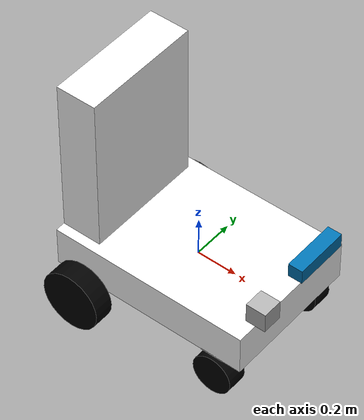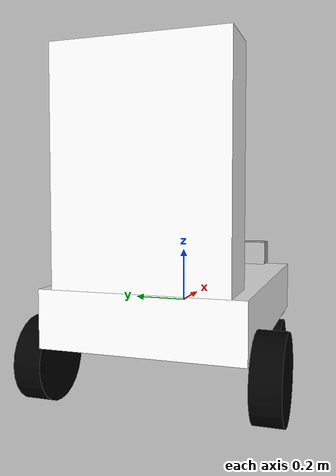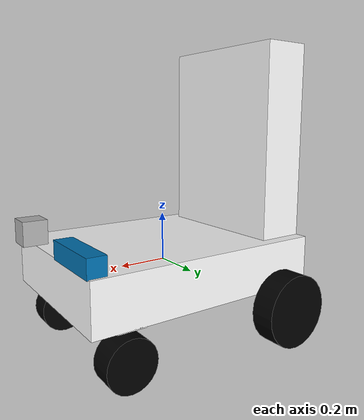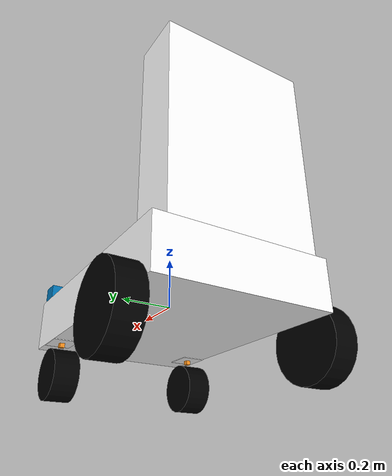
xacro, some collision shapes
<?xml version="1.0"?>
<!-- The castor wheel functionality - Credits for the Toronto Robotics Clud
  https://github.com/Toronto-Robotics-club/Gazebo_caster_sample/blob/master/jimmy_description/urdf/jimmy.xacro
 -->

<robot name="macroed" xmlns:xacro="http://ros.org/wiki/xacro">

  <xacro:property name="pi" value="3.1415926535897931" />

  <!--base link values-->
  <xacro:property name="base_link_length_width_height" value="0.650 0.381 0.132" />
  <xacro:property name="base_link_length" value="1" />
  <xacro:property name="base_link_width" value="0.7" />
  <xacro:property name="base_link_height" value="0.2" />
  <xacro:property name="base_link_mass" value="20"/> <!--25 kg-->

  <!--left and right castor mount plate size (both are same size)-->
  <xacro:property name="castor_mount_link_length_width_height" value="0.1145 0.10 0.0057" />
  <xacro:property name="castor_mount_link_length" value="0.1145" />
  <xacro:property name="castor_mount_link_width" value="0.10" />
  <xacro:property name="castor_mount_link_height" value="0.0057" />
  <xacro:property name="castor_mount_link_mass" value="0.25"/> <!--0.25 kg-->

  <!--dummy link to give castors rotation about the Z axis-->
  <xacro:property name="castor_mount_dummy_link_length" value="0.02" />
  <xacro:property name="castor_mount_dummy_link_width" value="0.02" />
  <xacro:property name="castor_mount_dummy_link_height" value="0.02" />
  <xacro:property name="castor_mount_dummy_link_mass" value="1.5"/> <!--0.25 kg-->

  <!--Friction for joints-->
  <xacro:property name="friction_val" value="0.15"/>

  <!--Other properties-->
  <xacro:property name="rear_wheel_radius" value="0.15" />
  <xacro:property name="front_wheel_radius" value="0.10" />
  <xacro:property name="rear_wheel_length" value="0.1" />
  <xacro:property name="front_wheel_length" value="0.1" />
  <xacro:property name="rear_wheel_mass" value="8" />
  <xacro:property name="front_wheel_mass" value="5" />
  <xacro:property name="base_z" value="0" />
  <xacro:property name="joint_friction" value="0.15" />
  <xacro:property name="joint_castor_friction" value="0.15" />

<!-- Material colors definition -->
  <material name="white">
    <color rgba="1 1 1 1"/>
  </material>
  <material name="black">
    <color rgba="0 0 0 1"/>
  </material>

<!-- Defining the robot base -->
  <link name="base_link">
    <visual>
      <origin rpy="0 0 0" xyz="0 0 ${base_z}"/>
      <geometry>
        <box size="1 0.7 0.2"/>
      </geometry>
      <material name="white"/>
    </visual>
    <collision>
      <geometry>
        <box size="1 0.7 0.2"/>
      </geometry>
    </collision>
    <inertial>
      <mass value="${base_link_mass}"/>
      <!--This is the 3x3 inertial matrix. See: https://wiki.ros.org/urdf/XML/link -->
      <!--where x=length; y=width; z=height. these lines of code came from Emiliano Borghi's project-->
      <inertia
        ixx="${base_link_mass*(base_link_width*base_link_width+base_link_height*base_link_height)/12}"
        ixy="0"
        ixz="0"
        iyy="${base_link_mass*(base_link_length*base_link_length+base_link_height*base_link_height)/12}"
        iyz="0"
        izz="${base_link_mass*(base_link_length*base_link_length+base_link_height*base_link_height)/12}"/>
    </inertial>
  </link>

<!-- Defining the robot base back -->
  <link name="base_back">
    <visual>
      <origin rpy="0 0 0" xyz="0 0 ${base_z}"/>
      <geometry>
        <box size="0.20 0.6 0.8"/>
      </geometry>
      <material name="white"/>
    </visual>
    <collision>
      <geometry>
        <box size="1 0.2 1"/>
      </geometry>
    </collision>
    <inertial>
      <mass value="15"/>
      <inertia ixx="1.0" ixy="0.0" ixz="0.0" iyy="1.0" iyz="0.0" izz="1.0"/>
    </inertial>
  </link>

  <joint name="base_back_joint" type="fixed">
    <parent link="base_link"/>
    <child link="base_back"/>
    <origin xyz="-0.40 0 0.50"/>
  </joint>

<!-- Defining the robot rear wheels -->
  <xacro:macro name="rear_wheel" params="prefix suffix reflect mass radius length">

    <link name="${prefix}_${suffix}_wheel">
      <visual>
        <origin xyz="0 0 ${base_z}" rpy="${pi/2} 0 0" />
        <geometry>
          <cylinder radius="${radius}" length="${length}"/>
        </geometry>
        <material name="black"/>
      </visual>
      <collision>
        <geometry>
          <cylinder radius="${radius}" length="${length}"/>
        </geometry>
        <origin xyz="0 0 ${base_z}" rpy="${pi/2} 0 0" />
      </collision>
      <inertial>
        <mass value="${mass}"/>
        <!--This is the 3x3 inertial matrix. See: https://wiki.ros.org/urdf/XML/link -->
        <inertia
            ixx="${mass*(3*radius*radius+length*length)/12}"
            ixy = "0"
            ixz = "0"
            iyy="${mass*(3*radius*radius+length*length)/12}"
            iyz = "0"
            izz="${mass*radius*radius/2}"
          />
      </inertial>
    </link>

    <joint name="${prefix}_${suffix}_wheel_joint" type="continuous">
      <axis xyz="0 1 0" rpy="0 0 0" />
      <parent link="base_link"/>
      <child link="${prefix}_${suffix}_wheel"/>
      <origin xyz="${-0.35} ${reflect*0.4} ${-0.17}"/>
      <dynamics damping="0.0" friction="${joint_friction}"/>
    </joint>
    <!-- This block provides the simulator (Gazebo) with information on a few additional
    physical properties. See http://gazebosim.org/tutorials/?tut=ros_urdf for more-->
    <gazebo reference="${prefix}_${suffix}_wheel">
      <mu1 value="0.5"/>
      <mu2 value="0.5"/>
      <material>Gazebo/Grey</material>
    </gazebo>

    <!-- This block connects the wheel joint to an actuator (motor), which informs both
    simulation and visualization of the robot -->
    <transmission name="${prefix}_${suffix}_wheel_trans">
      <type>transmission_interface/SimpleTransmission</type>
      <actuator name="${prefix}_${suffix}_wheel_motor">
        <mechanicalReduction>1</mechanicalReduction>
      </actuator>
      <joint name="${prefix}_${suffix}_wheel_joint">
        <hardwareInterface>VelocityJointInterface</hardwareInterface>
      </joint>
    </transmission>
  </xacro:macro>

<!-- Defining the robot front wheels -->
  <xacro:macro name="front_wheel" params="prefix suffix reflect mass radius length">

    <link name="${prefix}_${suffix}_wheel">
      <visual>
        <origin xyz="0 0 ${base_z}" rpy="${pi/2} 0 0" />
        <geometry>
          <cylinder radius="${radius}" length="${radius}"/>
        </geometry>
        <material name="black"/>
      </visual>
      <collision>
        <geometry>
          <cylinder radius="${radius}" length="${radius}"/>
        </geometry>
        <origin xyz="0 0 ${base_z}" rpy="${pi/2} 0 0" />
      </collision>
      <inertial>
        <mass value="${mass}"/>
        <!--This is the 3x3 inertial matrix. See: https://wiki.ros.org/urdf/XML/link -->
        <inertia
            ixx="${mass*(3*radius*radius+length*length)/12}"
            ixy = "0"
            ixz = "0"
            iyy="${mass*(3*radius*radius+length*length)/12}"
            iyz = "0"
            izz="${mass*radius*radius/2}"
          />
      </inertial>
    </link>

    <joint name="${prefix}_${suffix}_wheel_joint" type="continuous">
      <axis xyz="0 1 0" rpy="0 0 0" />
      <parent link="${prefix}_castor_dummy"/>
      <child link="${prefix}_${suffix}_wheel"/>
      <origin xyz="0 0 -0.12"/>
      <dynamics damping="0.0" friction="${joint_friction}"/>
    </joint>

    <!-- This block provides the simulator (Gazebo) with information on a few additional
    physical properties. See http://gazebosim.org/tutorials/?tut=ros_urdf for more-->
    <gazebo reference="${prefix}_${suffix}_wheel">
      <mu1 value="0.5"/>
      <mu2 value="0.5"/>
      <material>Gazebo/Grey</material>
    </gazebo>

    <!-- This block connects the wheel joint to an actuator (motor), which informs both
    simulation and visualization of the robot -->
    <transmission name="${prefix}_${suffix}_wheel_trans">
      <type>transmission_interface/SimpleTransmission</type>
      <actuator name="${prefix}_${suffix}_wheel_motor">
        <mechanicalReduction>1</mechanicalReduction>
      </actuator>
      <joint name="${prefix}_${suffix}_wheel_joint">
        <hardwareInterface>VelocityJointInterface</hardwareInterface>
      </joint>
    </transmission>
  </xacro:macro>

  <!-- Defining the castor mount -->
  <xacro:macro name="castor_mount" params="prefix reflect length width height material mass">
    <link name="${prefix}_castor_mount">
      <collision>
        <geometry>
          <box size="${length} ${width} ${height}"/>
        </geometry>
        <origin xyz="0 0 ${base_z}" rpy="${pi/2} 0 0" />
      </collision>
      <visual>
        <geometry>
          <box size="${length} ${width} ${height}"/>
        </geometry>
        <origin xyz="0 0 ${base_z}" rpy="0 0 0" />
        <material name="${material}"/>
      </visual>
      <inertial>
        <origin xyz="0 0 ${base_z}" rpy="0 0 0" />
        <mass value="${mass}"/>
        <!--This is the 3x3 inertial matrix. See: https://wiki.ros.org/urdf/XML/link -->
        <!--where x=length; y=width; z=height. these lines of code came from
        Emiliano Borghi's project-->
        <inertia
          ixx="${mass*(width*width+height*height)/12}"
    	    ixy = "0"
    	    ixz = "0"
    	    iyy="${mass*(length*length+height*height)/12}"
    	    iyz = "0"
    	    izz="${mass*(length*length+height*height)/12}"/>
      </inertial>

    </link>
    <joint name="${prefix}_castor_mount_joint" type="fixed">
      <axis xyz="0 1 0" rpy="0 0 0" />
      <parent link="base_link"/>
      <child link="${prefix}_castor_mount"/>
      <origin xyz="${0.35} ${reflect*0.30} ${-0.10}"/>
    </joint>
  </xacro:macro>

  <!-- Defining the castor dummy for Z axis rotation -->
  <xacro:macro name="castor_dummy" params="prefix reflect length width height material mass">
    <link name="${prefix}_castor_dummy">
      <collision>
        <geometry>
          <box size="${length} ${width} ${height}"/>
        </geometry>
        <origin xyz="0 0 ${base_z}" rpy="${pi/2} 0 0" />
      </collision>
      <visual>
        <geometry>
          <box size="${length} ${width} ${height}"/>
        </geometry>
        <origin xyz="0 0 ${base_z}" rpy="0 0 0" />
        <material name="${material}"/>
      </visual>
      <inertial>
        <origin xyz="0 0 ${base_z}" rpy="0 0 0" />
        <mass value="${mass}"/>
        <!--This is the 3x3 inertial matrix. See: https://wiki.ros.org/urdf/XML/link -->
        <!--where x=length; y=width; z=height. these lines of code came from
        Emiliano Borghi's project-->
        <inertia
          ixx="${mass*(width*width+height*height)/12}"
    	    ixy = "0"
    	    ixz = "0"
    	    iyy="${mass*(length*length+height*height)/12}"
    	    iyz = "0"
    	    izz="${mass*(length*length+height*height)/12}"/>
      </inertial>

    </link>
    <joint name="${prefix}_castor_dummy_joint" type="fixed">
      <axis xyz="0 0 1" rpy="0 0 0" />
      <parent link="${prefix}_castor_mount"/>
      <child link="${prefix}_castor_dummy"/>
      <origin xyz="0 0 -0.01"/>
    </joint>
  </xacro:macro>

  <!-- Setting the rear right wheel -->
  <xacro:rear_wheel prefix="right" suffix="rear" reflect="-1" mass="${rear_wheel_mass}" radius="${rear_wheel_radius}" length="${rear_wheel_length}"/>
  <!-- Setting the rear left wheel -->
  <xacro:rear_wheel prefix="left" suffix="rear" reflect="1" mass="${rear_wheel_mass}"  radius="${rear_wheel_radius}" length="${rear_wheel_length}"/>
  <!-- Setting the castor mount left wheel -->
  <xacro:castor_mount prefix="left" reflect="1" length="${castor_mount_link_length}"
                                                width="${castor_mount_link_width}"
                                                height="${castor_mount_link_height}"
                                                material="white"
                                                mass="${castor_mount_link_mass}"/>
  <!-- Setting the castor mount right wheel -->
  <xacro:castor_mount prefix="right" reflect="-1" length="${castor_mount_link_length}"
                                                width="${castor_mount_link_width}"
                                                height="${castor_mount_link_height}"
                                                material="white"
                                                mass="${castor_mount_link_mass}"/>
  <!-- Setting the castor dummy left wheel -->
  <xacro:castor_dummy prefix="left" reflect="1" length="${castor_mount_dummy_link_length}"
                                                width="${castor_mount_dummy_link_width}"
                                                height="${castor_mount_dummy_link_height}"
                                                material="orange"
                                                mass="${castor_mount_dummy_link_mass}"/>
  <!-- Setting the castor dummy left wheel -->
  <xacro:castor_dummy prefix="right" reflect="-1" length="${castor_mount_dummy_link_length}"
                                                width="${castor_mount_dummy_link_width}"
                                                height="${castor_mount_dummy_link_height}"
                                                material="orange"
                                                mass="${castor_mount_dummy_link_mass}"/>

  <!-- Setting the front right wheel -->
  <xacro:front_wheel prefix="right" suffix="front" reflect="-1" mass="${front_wheel_mass}"  radius="${front_wheel_radius}" length="${front_wheel_length}"/>
  <!-- Setting the front left wheel -->
  <xacro:front_wheel prefix="left" suffix="front" reflect="1" mass="${front_wheel_mass}"  radius="${front_wheel_radius}" length="${front_wheel_length}"/>

  <!-- Kinect definition -->
  <gazebo reference="camera_depth_frame">
    <sensor name="camera1" type="depth">
      <always_on>true</always_on>
      <update_rate>20.0</update_rate>
      <camera>
        <horizontal_fov>1.0471975512</horizontal_fov>
        <image>
          <format>R8G8B8</format>
          <width>640</width>
          <height>480</height>
        </image>
        <clip>
          <near>0.05</near>
          <far>8.0</far>
        </clip>
      </camera>
      <plugin filename="libgazebo_ros_openni_kinect.so" name="camera_depth_frame_kinect_controller">
        <baseline>0.1</baseline>
        <alwaysOn>true</alwaysOn>
        <updateRate>10</updateRate>
        <cameraName>camera1</cameraName>
        <imageTopicName>/camera/color/image_raw</imageTopicName>
        <cameraInfoTopicName>/camera/color/camera_info</cameraInfoTopicName>
        <depthImageTopicName>/camera/depth/image_raw</depthImageTopicName>
        <depthImageCameraInfoTopicName>/camera/depth/camera_info</depthImageCameraInfoTopicName>
        <pointCloudTopicName>/camera/depth/points</pointCloudTopicName>
        <frameName>camera_depth_optical_frame</frameName>
        <pointCloudCutoff>0.5</pointCloudCutoff>
        <pointCloudCutoffMax>3.0</pointCloudCutoffMax>
        <distortion_k1>0.0</distortion_k1>
        <distortion_k2>0.0</distortion_k2>
        <distortion_k3>0.0</distortion_k3>
        <distortion_t1>0.0</distortion_t1>
        <distortion_t2>0.0</distortion_t2>

      </plugin>
    </sensor>
  </gazebo>

  <!-- Parameterised in part by the values in kinect_properties.urdf.xacro -->
  <joint name="camera_rgb_joint" type="fixed">
    <origin rpy="0 0 0" xyz="0.50 0.2 0.15"/>
    <parent link="base_link"/>
    <child link="camera_rgb_frame"/>
  </joint>

  <link name="camera_rgb_frame">
    <inertial>
      <mass value="0.001"/>
      <origin xyz="0 0 0"/>
      <inertia ixx="0.0001" ixy="0.0" ixz="0.0" iyy="0.0001" iyz="0.0" izz="0.0001"/>
    </inertial>
  </link>

  <joint name="camera_rgb_optical_joint" type="fixed">
    <origin rpy="-1.57079632679 0 -1.57079632679" xyz="0 0 0"/>
    <parent link="camera_rgb_frame"/>
    <child link="camera_rgb_optical_frame"/>
  </joint>

  <link name="camera_rgb_optical_frame">
    <inertial>
      <mass value="0.001"/>
      <origin xyz="0 0 0"/>
      <inertia ixx="0.0001" ixy="0.0" ixz="0.0" iyy="0.0001" iyz="0.0" izz="0.0001"/>
    </inertial>
  </link>

  <joint name="camera_joint" type="fixed">
    <origin rpy="0 0 0" xyz="-0.031 -0.0 -0.016"/>
    <parent link="camera_rgb_frame"/>
    <child link="camera_link"/>
  </joint>

  <link name="camera_link">
    <visual>
      <origin rpy="0.0 0 1.57079632679" xyz="0 0 0"/>
      <geometry>
        <mesh filename="package://robot_cognition_system/sim_model/meshes/kinect.dae"/>
      </geometry>
    </visual>
    <collision>
      <origin rpy="0 0 0" xyz="0.0 0.0 0.0"/>
      <geometry>
        <box size="0.07271 0.27794 0.073"/>
      </geometry>
    </collision>
    <inertial>
      <mass value="0.001"/>
      <origin xyz="0 0 0"/>
      <inertia ixx="0.0001" ixy="0.0" ixz="0.0" iyy="0.0001" iyz="0.0" izz="0.0001"/>
    </inertial>
  </link>

  <joint name="camera_depth_joint" type="fixed">
    <origin rpy="0 0 0" xyz="0 0.0 0"/>
    <parent link="camera_rgb_frame"/>
    <child link="camera_depth_frame"/>
  </joint>

  <link name="camera_depth_frame">
    <inertial>
      <mass value="0.001"/>
      <origin xyz="0 0 0"/>
      <inertia ixx="0.0001" ixy="0.0" ixz="0.0" iyy="0.0001" iyz="0.0" izz="0.0001"/>
    </inertial>
  </link>

  <joint name="camera_depth_optical_joint" type="fixed">
    <origin rpy="-1.57079632679 0 -1.57079632679" xyz="0 0 0"/>
    <parent link="camera_depth_frame"/>
    <child link="camera_depth_optical_frame"/>
  </joint>

  <link name="camera_depth_optical_frame">
    <inertial>
      <mass value="0.001"/>
      <origin xyz="0 0 0"/>
      <inertia ixx="0.0001" ixy="0.0" ixz="0.0" iyy="0.0001" iyz="0.0" izz="0.0001"/>
    </inertial>
  </link>

<!-- Laser Pointer Definition -->
 <gazebo reference="hokuyo_link">

    <sensor type="ray" name="head_hokuyo_sensor">
      <pose>0 0 0 0 0 0</pose>
      <visualize>true</visualize>
      <update_rate>40</update_rate>
      <ray>
        <scan>
          <horizontal>
            <samples>720</samples>
            <resolution>1</resolution>
            <min_angle>-0.01</min_angle>
            <max_angle>0.01</max_angle>
          </horizontal>
        </scan>
        <range>
          <min>0.10</min>
          <max>30.0</max>
          <resolution>0.01</resolution>
        </range>
        <noise>
          <type>gaussian</type>
          <mean>0.0</mean>
          <stddev>0.01</stddev>
        </noise>
      </ray>
      <plugin name="gazebo_ros_head_hokuyo_controller" filename="libgazebo_ros_laser.so">
        <topicName>/laser/pointer</topicName>
        <frameName>hokuyo_link</frameName>
      </plugin>
    </sensor>
  </gazebo>

  <joint name="hokuyo_joint" type="continuous">
    <axis xyz="0 1 0" />
    <limit lower="-${3.1}" upper="${3.1}"  effort="50" velocity="1"/>
    <origin xyz="0.0 0.0 0.0" rpy="0 0 0"/>
    <parent link="hokuyo_base_link"/>
    <child link="hokuyo_link"/>
  </joint>

  <joint name="hokuyo_joint_pan" type="continuous">
    <axis xyz="0 0 1" />
    <limit lower="-${3.15/2}" upper="${3.15/2}"  effort="50" velocity="1"/>
    <origin xyz="0.50 -0.20 0.15" rpy="0 0 0"/>
    <parent link="base_link"/>
    <child link="hokuyo_base_link"/>
  </joint>

  <link name="hokuyo_link">
    <collision>
      <origin xyz="0 0 0" rpy="0 0 0"/>
      <geometry>
    <box size="0.1 0.1 0.1"/>
      </geometry>
    </collision>
    <visual>
      <origin xyz="0 0 0" rpy="0 0.0 0.0"/>
      <geometry>
        <mesh filename="package://robot_cognition_system/sim_model/meshes/hokuyo.dae"/>
      </geometry>
    </visual>
    <inertial>
      <mass value="1e-5" />
      <origin xyz="0 0 0" rpy="0 0 0"/>
      <inertia ixx="1e-6" ixy="0" ixz="0" iyy="1e-6" iyz="0" izz="1e-6" />
    </inertial>
  </link>

  <link name="hokuyo_base_link">
    <visual>
      <origin rpy="0 0 0" xyz="0 0 0"/>
      <geometry>
        <box size="0.02 0.02 0.02"/>
      </geometry>
      <material name="black"/>
    </visual>
    <collision>
      <geometry>
        <box size="0.02 0.02 0.02"/>
      </geometry>
    </collision>
    <inertial>
      <mass value="1e-5" />
      <origin xyz="0 0 0" rpy="0 0 0"/>
      <inertia ixx="1e-6" ixy="0" ixz="0" iyy="1e-6" iyz="0" izz="1e-6" />
    </inertial>
  </link>

  <transmission name="laser_trans_tilt">
    <type>transmission_interface/SimpleTransmission</type>
    <actuator name="laser_motor_tilt">
      <mechanicalReduction>1</mechanicalReduction>
    </actuator>
    <joint name="hokuyo_joint">
      <hardwareInterface>PositionJointInterface</hardwareInterface>
    </joint>
  </transmission>

  <transmission name="laser_trans_pan">
    <type>transmission_interface/SimpleTransmission</type>
    <actuator name="laser_motor_pan">
      <mechanicalReduction>1</mechanicalReduction>
    </actuator>
    <joint name="hokuyo_joint_pan">
      <hardwareInterface>PositionJointInterface</hardwareInterface>
    </joint>
  </transmission>

<!-- Gazebo plugin for ROS Control -->

  <gazebo>
    <plugin name="gazebo_ros_control" filename="libgazebo_ros_control.so">
      <robotNamespace>/</robotNamespace>
      <robotSimType>gazebo_ros_control/DefaultRobotHWSim</robotSimType>
      <legacyModeNS>true</legacyModeNS>
    </plugin>
  </gazebo>

</robot>
